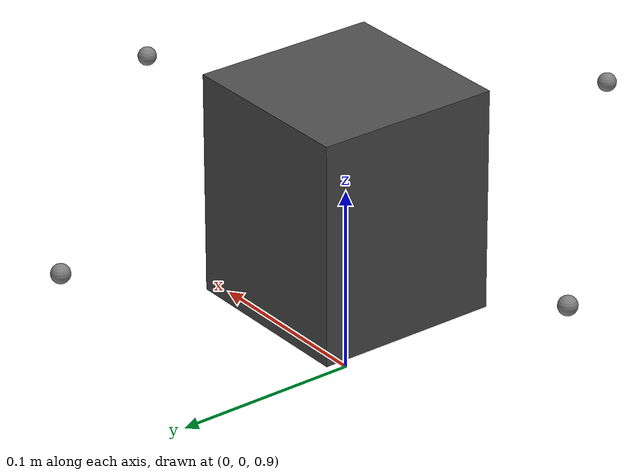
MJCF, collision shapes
<mujoco model="quad_x">

  <compiler angle="radian" meshdir="../../meshes"/>

  <asset>
    <mesh name="body" file="hummingbird.obj" scale="1 1 1"/>
    <mesh name="prop_cw"  file="propeller_cw.obj"  scale="0.1 0.1 0.1"/>
    <mesh name="prop_ccw" file="propeller_ccw.obj" scale="0.1 0.1 0.1"/>
  </asset>

  <worldbody>
    <body name="base_link" pos="0 0 1.0">
      <freejoint name="root"/>

      <site name="imu_site" pos="0 0 0" size="0.005"/>

      <!-- LiDAR: horizontal scan plane at drone center -->
      <site name="lidar_site" pos="0 0 -0.02" size="0.005" rgba="0 1 0 0.3"/>

      <!-- Infrared rangefinder: bottom of body, pointing down (-Z) -->
      <site name="infrared_site" pos="0 0 -0.06" euler="180 0 0"
            size="0.003" rgba="1 0 0 0.3"/>

      <!-- Forward-facing RGBD camera -->
      <camera name="drone_camera" pos="0.085 0.085 -0.02"
              xyaxes="0 -1 0 0 0 1" fovy="60"/>

      <inertial pos="0 0 0" mass="0.68"
                diaginertia="0.007 0.007 0.012"/>

      <geom name="body_visual" type="mesh" mesh="body"
            contype="0" conaffinity="0" rgba="0.3 0.3 0.3 1"/>
      <geom name="body_collision" type="box" size="0.05 0.05 0.06"
            rgba="0.3 0.3 0.3 0" mass="0"/>

      <!-- Rotor 0: Front (+X), CW -->
      <body name="rotor_0" pos="0.17 0 0.01">
        <joint name="rotor_0_joint" type="hinge" axis="0 0 1"
               damping="0.00005" frictionloss="0.0001"/>
        <inertial pos="0 0 0" mass="0.009"
                  diaginertia="7.669e-06 7.507e-06 1.755e-07"/>
        <geom name="prop_0" type="mesh" mesh="prop_cw"
              contype="0" conaffinity="0" rgba="1.0 0.2 0.2 0.6"/>
        <site name="thrust_0" pos="0 0 0" size="0.005"/>
      </body>

      <!-- Rotor 1: Left (+Y), CCW -->
      <body name="rotor_1" pos="0 0.17 0.01">
        <joint name="rotor_1_joint" type="hinge" axis="0 0 1"
               damping="0.00005" frictionloss="0.0001"/>
        <inertial pos="0 0 0" mass="0.009"
                  diaginertia="7.669e-06 7.507e-06 1.755e-07"/>
        <geom name="prop_1" type="mesh" mesh="prop_ccw"
              contype="0" conaffinity="0" rgba="0.2 0.4 1.0 0.6"/>
        <site name="thrust_1" pos="0 0 0" size="0.005"/>
      </body>

      <!-- Rotor 2: Back (-X), CW -->
      <body name="rotor_2" pos="-0.17 0 0.01">
        <joint name="rotor_2_joint" type="hinge" axis="0 0 1"
               damping="0.00005" frictionloss="0.0001"/>
        <inertial pos="0 0 0" mass="0.009"
                  diaginertia="7.669e-06 7.507e-06 1.755e-07"/>
        <geom name="prop_2" type="mesh" mesh="prop_cw"
              contype="0" conaffinity="0" rgba="0.2 0.4 1.0 0.6"/>
        <site name="thrust_2" pos="0 0 0" size="0.005"/>
      </body>

      <!-- Rotor 3: Right (-Y), CCW -->
      <body name="rotor_3" pos="0 -0.17 0.01">
        <joint name="rotor_3_joint" type="hinge" axis="0 0 1"
               damping="0.00005" frictionloss="0.0001"/>
        <inertial pos="0 0 0" mass="0.009"
                  diaginertia="7.669e-06 7.507e-06 1.755e-07"/>
        <geom name="prop_3" type="mesh" mesh="prop_ccw"
              contype="0" conaffinity="0" rgba="0.2 0.4 1.0 0.6"/>
        <site name="thrust_3" pos="0 0 0" size="0.005"/>
      </body>
    </body>
  </worldbody>

  <actuator>
    <general name="thrust_0" site="thrust_0"
             gear="0 0 1 0 0 -0.016" ctrlrange="0 6" ctrllimited="true"/>
    <general name="thrust_1" site="thrust_1"
             gear="0 0 1 0 0  0.016" ctrlrange="0 6" ctrllimited="true"/>
    <general name="thrust_2" site="thrust_2"
             gear="0 0 1 0 0 -0.016" ctrlrange="0 6" ctrllimited="true"/>
    <general name="thrust_3" site="thrust_3"
             gear="0 0 1 0 0  0.016" ctrlrange="0 6" ctrllimited="true"/>

    <velocity name="spin_0" joint="rotor_0_joint" kv="0.0001"
              ctrlrange="-838 0" ctrllimited="true"/>
    <velocity name="spin_1" joint="rotor_1_joint" kv="0.0001"
              ctrlrange="0 838" ctrllimited="true"/>
    <velocity name="spin_2" joint="rotor_2_joint" kv="0.0001"
              ctrlrange="-838 0" ctrllimited="true"/>
    <velocity name="spin_3" joint="rotor_3_joint" kv="0.0001"
              ctrlrange="0 838" ctrllimited="true"/>
  </actuator>

  <sensor>
    <accelerometer name="imu_accel" site="imu_site"/>
    <gyro          name="imu_gyro"  site="imu_site"/>
    <framequat     name="orientation" objtype="site" objname="imu_site"/>
    <framepos      name="position"   objtype="site" objname="imu_site"/>
    <framexaxis    name="heading"    objtype="site" objname="imu_site"/>
    <velocimeter   name="linvel"     site="imu_site"/>
    <!-- Magnetometer axes (3-axis heading reference) -->
    <frameyaxis    name="mag_y"      objtype="site" objname="imu_site"/>
    <framezaxis    name="mag_z"      objtype="site" objname="imu_site"/>
  </sensor>

</mujoco>
